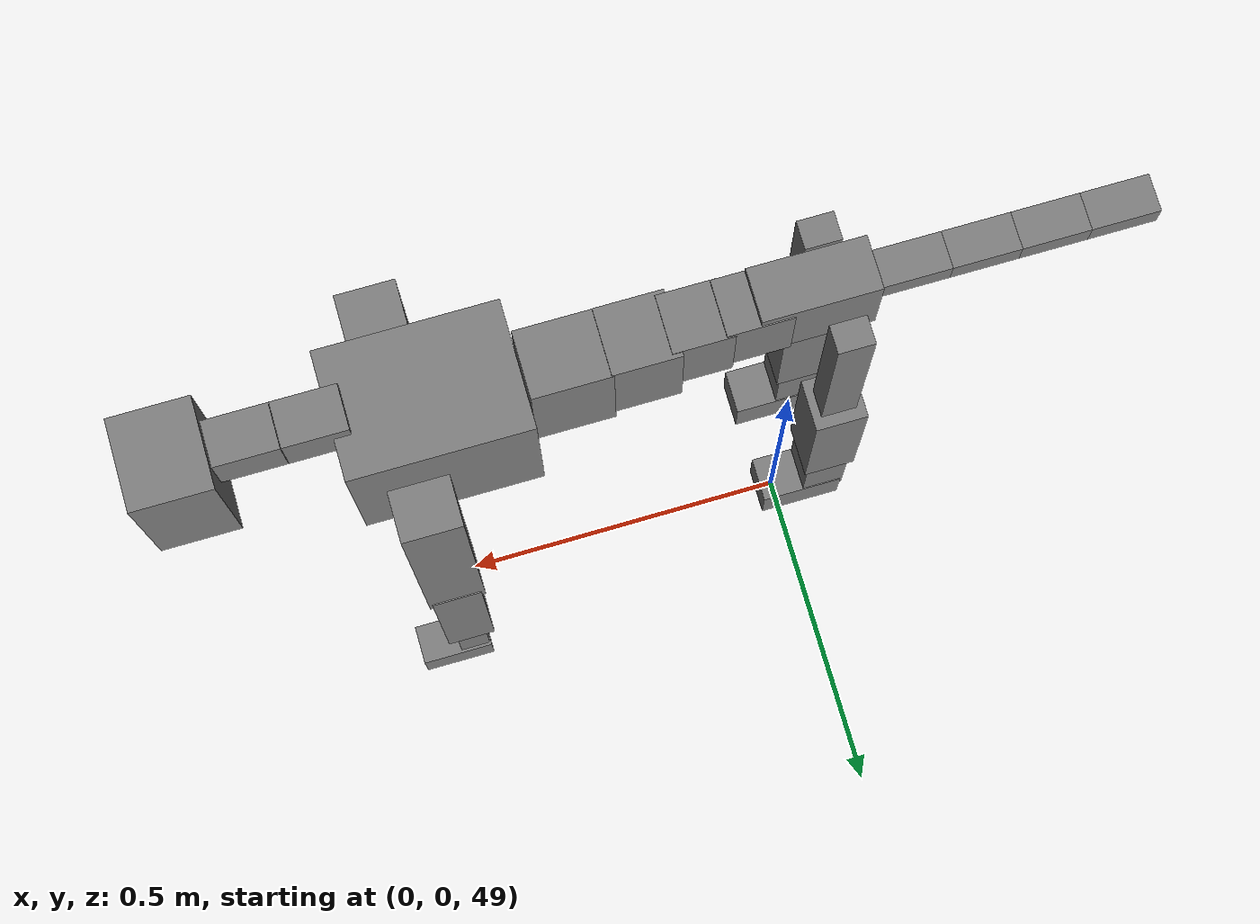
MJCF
<mujoco model="dog">

    <default>
        <joint armature="0.02" stiffness="1" damping="0.2" limited="true"/>
        <geom condim="3" friction="1 0.05 0.05" margin="0.01"/>
        <motor ctrllimited="true" ctrlrange="-1.0 1.0" forcelimited="true" gear="50"/>
    </default>

    <compiler inertiafromgeom="true" angle="radian"/>

    <option timestep="0.016" iterations="50" tolerance="1e-10" solver="Newton" jacobian="dense" cone="pyramidal"/>

    <size nconmax="20000" njmax="60000" nstack="5000000"/>
    <visual>
        <map force="0.1" zfar="30"/>
        <rgba haze="0.15 0.25 0.35 1"/>
        <quality shadowsize="2048"/>
        <global offwidth="800" offheight="800"/>
    </visual>

    <asset>
        <texture type="skybox" builtin="gradient" rgb1="0.3 0.5 0.7" rgb2="0 0 0" width="512" height="512"/>
        <texture name="texplane" type="2d" builtin="checker" rgb1=".2 .3 .4" rgb2=".1 0.15 0.2" width="512" height="512"
                 mark="cross" markrgb=".8 .8 .8"/>
        <texture name="texgeom" type="cube" builtin="flat" mark="cross" width="127" height="1278" rgb1="0.8 0.6 0.4"
                 rgb2="0.8 0.6 0.4" markrgb="1 1 1" random="0.01"/>

        <material name="matplane" reflectance="0.3" texture="texplane" texrepeat="1 1" texuniform="true"/>
        <material name="matgeom" texture="texgeom" texuniform="true" rgba="0.8 0.6 .4 1"/>
    </asset>

    <worldbody>
        <geom name="floor" pos="0 0 0" size="0 0 .25" type="plane" material="matplane" condim="3"/>

        <light directional="false" diffuse=".2 .2 .2" specular="0 0 0" pos="0 0 5" dir="0 0 -1" castshadow="false"/>
        <light mode="targetbodycom" target="torso" directional="false" diffuse=".8 .8 .8" specular="0.3 0.3 0.3"
               pos="0 0 4.0" dir="0 0 -1"/>

        <body name="root" pos="0 0 50">
            <freejoint name="root_1"/>
            <geom type="box" pos="0 0 -0.02" size="0.0774  0.0358  0.063" density="2030"/>

            <body name="spine1" pos="0.054 0 0">
                <joint name="spine1_y" axis="0 1 0" range="0 0.7" limited="true"/>
                <geom type="box" pos="0.02375 0 -0.03" size="0.04375  0.0375  0.05985" density="2030"/>

                <body name="spine2" pos="0.0612 0 0">
                    <joint name="spine2_y" axis="0 1 0" range="-0.15 0.15" limited="true"/>
                    <geom type="box" pos="0.03555  0  -0.04" size="0.04055  0.039  0.06615" density="2030"/>

                    <body name="spine3" pos="0.0730 0 0">
                        <joint name="spine3_y" axis="0 1 0" range="-0.15 0.15" limited="true"/>
                        <geom type="box" pos="0.03555  0  -0.057" size="0.04555  0.0445  0.081" density="2030"/>

                        <body name="spine4" pos="0.0780 0 0">
                            <joint name="spine4_y" axis="0 1 0" range="-0.15 0.15" limited="true"/>
                            <geom type="box" pos="0.05265  0  -0.07" size="0.05265  0.045  0.09135" density="2030"/>

                            <body name="torso" pos="0.1082 0 0">
                                <joint name="torso_y" axis="0 1 0" range="-0.15 0.15" limited="true"/>
                                <geom type="box" pos="0.11925  0  -0.085" size="0.11925  0.085  0.11745"
                                      density="2030"/>

                                <body name="neck1" pos="0.2160  0   0.0180">
                                    <joint name="neck1_y" axis="0 1 0" range="-1.2  -1" limited="true"/>
                                    <geom type="box" pos="0.0423  0  0" size="0.0423  0.03  0.036" density="2325"/>

                                    <body name="neck2" pos="0.0853  0  0">
                                        <joint name="neck2_y" axis="0 1 0" range="0.1  0" limited="true"/>
                                        <geom type="box" pos="0.0423  0  0" size="0.0423  0.03  0.036" density="2325"/>

                                        <body name="head" pos="0.0853  0  0">
                                            <joint name="head_y" axis="0 1 0" range="-0.3  -0.2" limited="true"/>
                                            <geom type="box" pos="0.0531  0  -0.055" size="0.0531  0.06  0.1044"
                                                  density="4030"/>

                                        </body>
                                    </body>
                                </body>

                                <body name="front_shoulder" pos="0.156  0   -0.0480">
                                    <joint name="front_shoulder_y" axis="0 1 0" range="-1 1.5" limited="true"/>
                                    <geom type="box" pos="0 0.13 -0.1846" size="0.0397  0.0339  0.2112" density="1158"/>
                                    <geom type="box" pos="0 -0.13 -0.1846" size="0.0397  0.0339  0.2112"
                                          density="1158"/>

                                    <body name="front_elbow" pos="0  0  -0.3691">
                                        <joint name="front_elbow_y" axis="0 1 0" range="-2 0" limited="true"/>
                                        <geom type="box" pos="0 0.13 -0.1496" size="0.0349  0.0357  0.1496"
                                              density="1081"/>
                                        <geom type="box" pos="0 -0.13 -0.1496" size="0.0349  0.0357  0.1496"
                                              density="1081"/>

                                        <body name="front_wrist" pos="0  0  -0.2991">
                                            <joint name="front_wrist_y" axis="0 1 0" range="-0.2 0" limited="true"/>
                                            <geom type="box" pos="0 0.13 -0.0728" size="0.0224  0.0249  0.0859"
                                                  density="1664"/>
                                            <geom type="box" pos="0 -0.13 -0.0728" size="0.0224  0.0249  0.0859"
                                                  density="1664"/>

                                            <body name="front_finger_end" pos="0  0  -0.1455">
                                                <joint name="front_finger_y" axis="0 1 0" range="-0.4 1"
                                                       limited="true"/>
                                                <geom type="box" pos="0.0292  0.13  -0.0164"
                                                      size="0.0535  0.0292  0.0314" density="1515"/>
                                                <geom type="box" pos="0.0292  -0.13  -0.0164"
                                                      size="0.0535  0.0292  0.0314" density="1515"/>

                                            </body>

                                        </body>
                                    </body>
                                </body>

                            </body>
                        </body>
                    </body>
                </body>
            </body>

            <body name="back_hip" pos="-0.03 0 -0.018">
                <joint name="back_hip_y" axis="0 1 0" range="-1.5 0.3" limited="true"/>
                <geom type="box" pos="0 0.07 -0.1411" size="0.0245  0.0192  0.1639" density="1154"/>
                <geom type="box" pos="0 -0.07 -0.1411" size="0.0245  0.0192  0.1639" density="1154"/>

                <body name="back_knee" pos="0  0  -0.2822">
                    <joint name="back_knee_y" axis="0 1 0" range="0 2.8" limited="true"/>
                    <geom type="box" pos="0 0.07 -0.1056" size="0.0363  0.0358  0.1211" density="1227"/>
                    <geom type="box" pos="0 -0.07 -0.1056" size="0.0363  0.0358  0.1211" density="1227"/>

                    <body name="back_ankle" pos="0  0  -0.2111">
                        <joint name="back_ankle_y" axis="0 1 0" range="-2.2 0" limited="true"/>
                        <geom type="box" pos="0 0.07 -0.0705" size="0.0302  0.0302  0.0817" density="1284"/>
                        <geom type="box" pos="0 -0.07 -0.0705" size="0.0302  0.0302  0.0817" density="1284"/>

                        <body name="back_toe_end" pos="0  0  -0.1409">
                            <joint name="back_toe_y" axis="0 1 0" range="-0.4 1" limited="true"/>
                            <geom type="box" pos="0.0317  0.07  -0.0202" size="0.0582  0.0317  0.0352" density="1515"/>
                            <geom type="box" pos="0.0317  -0.07  -0.0202" size="0.0582  0.0317  0.0352" density="1515"/>

                        </body>
                    </body>
                </body>
            </body>

            <body name="tail1" pos="-0.074 0 -0.006">
                <joint name="tail1_y" axis="0 1 0" range="-0.2 0.2" limited="true"/>
                <geom type="box" pos="-0.0536  0  0" size="0.045  0.025  0.0175" density="1587"/>

                <body name="tail2" pos="-0.09 0 0">
                    <joint name="tail2_y" axis="0 1 0" range="-0.2 0.2" limited="true"/>
                    <geom type="box" pos="-0.0536  0  0" size="0.045  0.025  0.0175" density="1587"/>

                    <body name="tail3" pos="-0.09 0 0">
                        <joint name="tail3_y" axis="0 1 0" range="-0.2 0.2" limited="true"/>
                        <geom type="box" pos="-0.0536  0  0" size="0.045  0.025  0.0175" density="1587"/>

                        <body name="tail4" pos="-0.09 0 0">
                            <joint name="tail4_y" axis="0 1 0" range="-0.2 0.2" limited="true"/>
                            <geom type="box" pos="-0.0536  0  0" size="0.045  0.025  0.0175" density="1587"/>

                        </body>
                    </body>
                </body>
            </body>
        </body>
    </worldbody>

    <actuator>
        <motor joint="spine1_y" forcerange="-150 150     "/>
        <motor joint="spine2_y" forcerange="-150 150     "/>
        <motor joint="spine3_y" forcerange="-150 150     "/>
        <motor joint="spine4_y" forcerange="-150 150     "/>
        <motor joint="torso_y" forcerange="-150 150     "/>
        <motor joint="neck1_y" forcerange="-100 100       "/>
        <motor joint="neck2_y" forcerange="-100 100       "/>
        <motor joint="head_y" forcerange="-150 150       "/>
        <motor joint="front_shoulder_y" forcerange="-145.38 180.57"/>
        <motor joint="front_elbow_y" forcerange="-188.39 171.27"/>
        <motor joint="front_wrist_y" forcerange="-99.13 100.10"/>
        <motor joint="front_finger_y" forcerange="-58.80 56.92"/>
        <motor joint="back_hip_y" forcerange="-207.03 249.49"/>
        <motor joint="back_knee_y" forcerange="-330.52 390.30"/>
        <motor joint="back_angle_y" forcerange="-150.35 233.23"/>
        <motor joint="back_toe_y" forcerange="-94.15 79.76"/>
        <motor joint="tail1_y" forcerange="-50 50     "/>
        <motor joint="tail2_y" forcerange="-50 50     "/>
        <motor joint="tail3_y" forcerange="-50 50     "/>
        <motor joint="tail4_y" forcerange="-50 50     "/>
    </actuator>
</mujoco>
